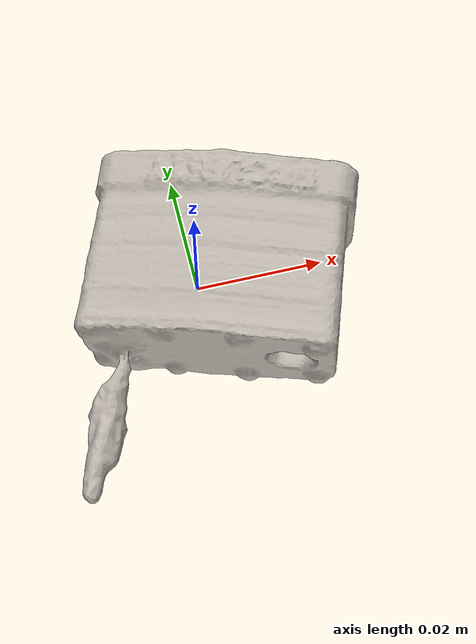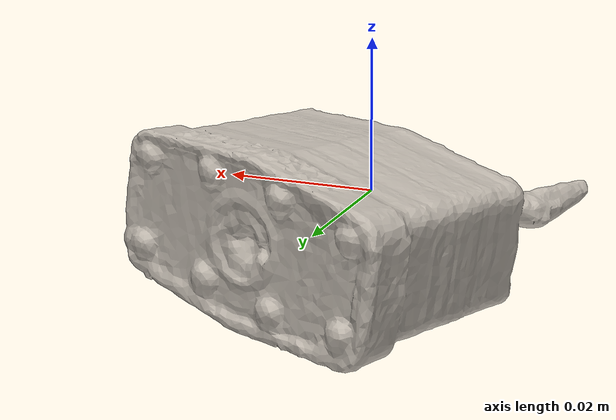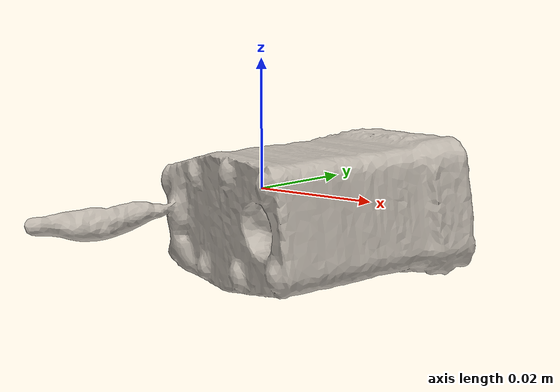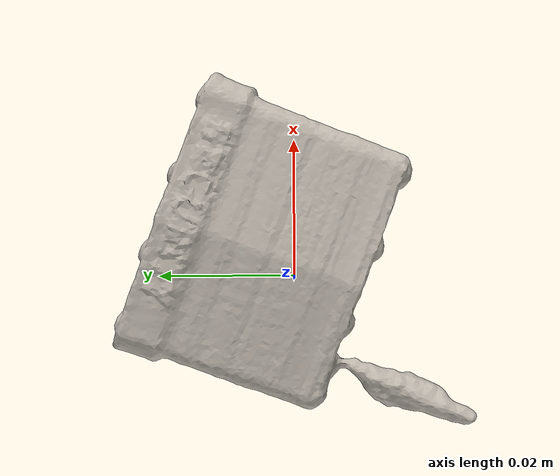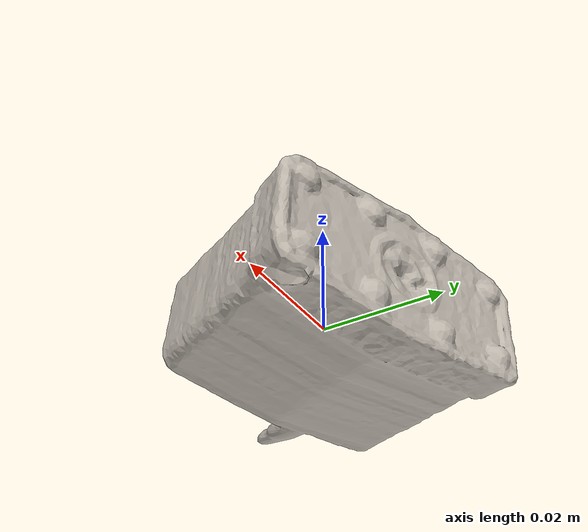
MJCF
<mujoco model="bread">
  <asset>
    <mesh file="nontextured.stl" name="obj_mesh" scale="0.8 0.8 0.8"/>
    <texture file="../../../../../textures/bread.png" type="2d" name="tex-bread" />
    <material name="bread" reflectance="0.7" texrepeat="15 15" texture="tex-bread" texuniform="true"/>
  </asset>
  <worldbody>
    <body>
      <body name="collision">
        <geom pos="0.0179465 -0.0027124999999999996 -0.0142495" mesh="obj_mesh" type="mesh" solimp="0.998 0.998 0.001" solref="0.001 1" density="50" friction="0.95 0.3 0.1"  material="bread" group="1" condim="4"/>
      </body>
      <body name="visual">
        <geom pos="0.0179465 -0.0027124999999999996 -0.0142495" mesh="obj_mesh" type="mesh" material="bread"  conaffinity="0" contype="0"  group="0" mass="0.0001"/>
        <geom pos="0.0179465 -0.0027124999999999996 -0.0142495" mesh="obj_mesh" type="mesh" material="bread"  conaffinity="0" contype="0"  group="1" mass="0.0001"/>
      </body>
      <site rgba="0 0 0 0" size="0.005" pos="0 0 -0.014570499999999998" name="bottom_site"/>
      <site rgba="0 0 0 0" size="0.005" pos="0 0 0.014570499999999998" name="top_site"/>
      <site rgba="0 0 0 0" size="0.005" pos="0.0334865 0.0340275 0.014570499999999998" name="horizontal_radius_site"/>
    </body>
  </worldbody>
</mujoco>
